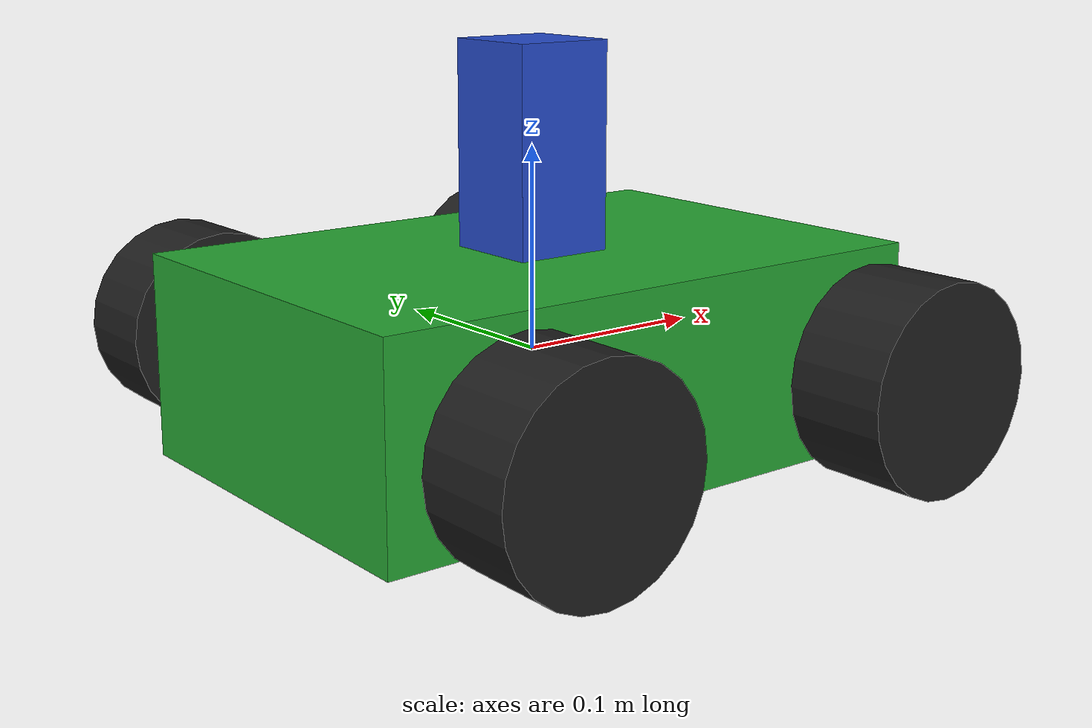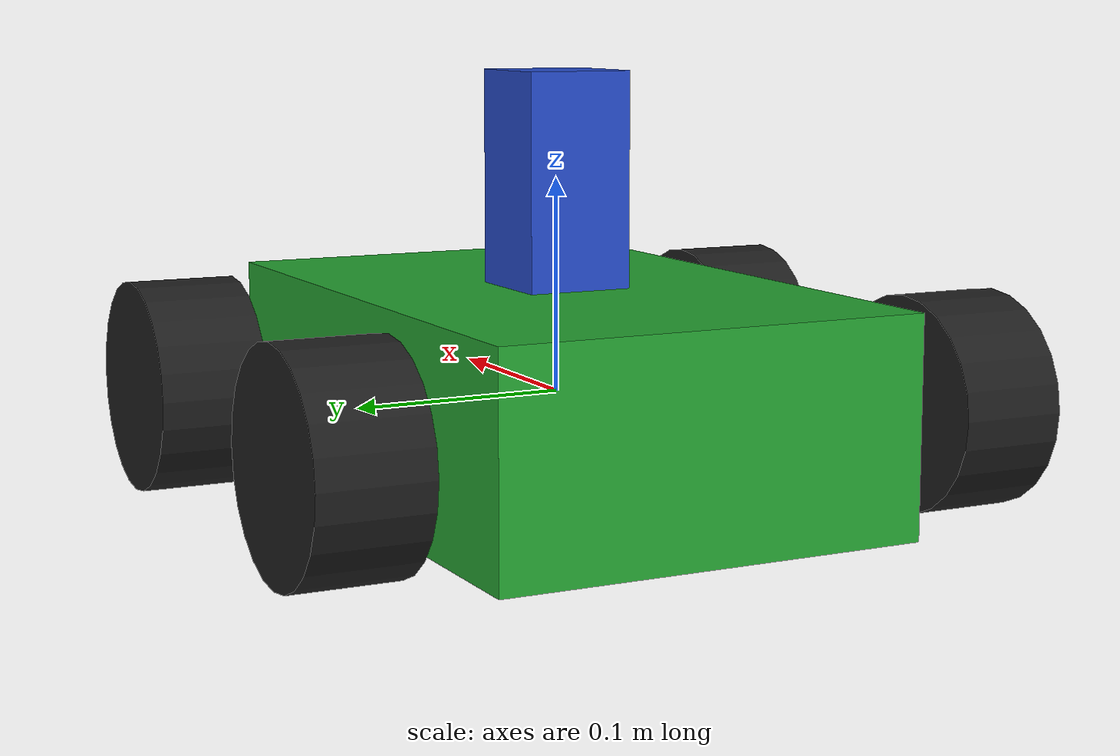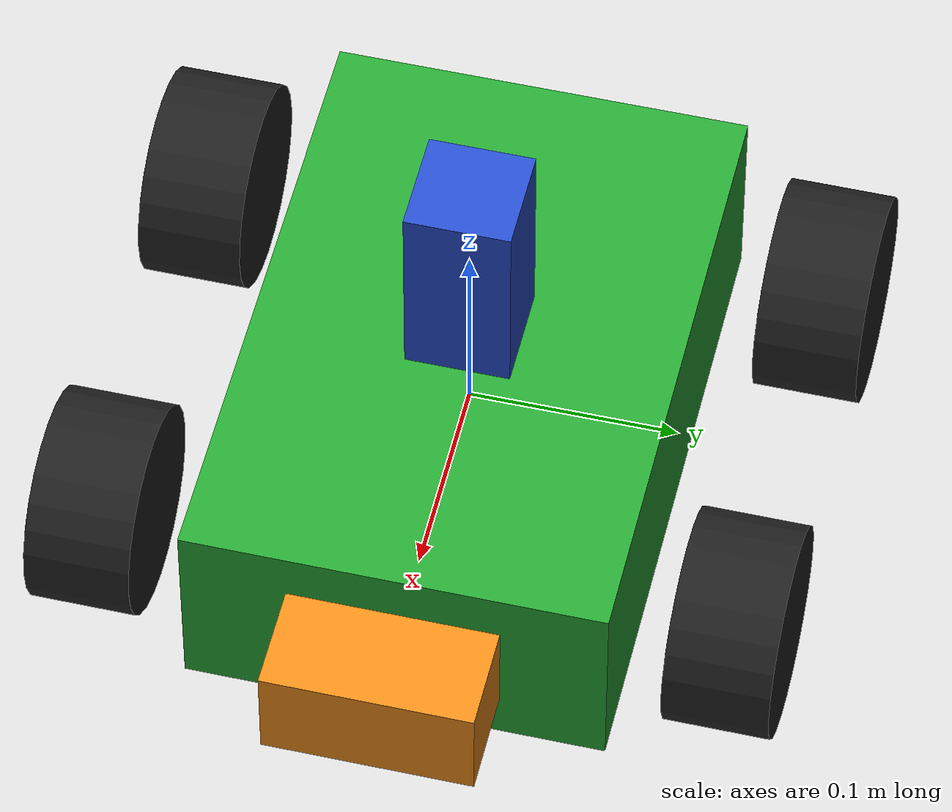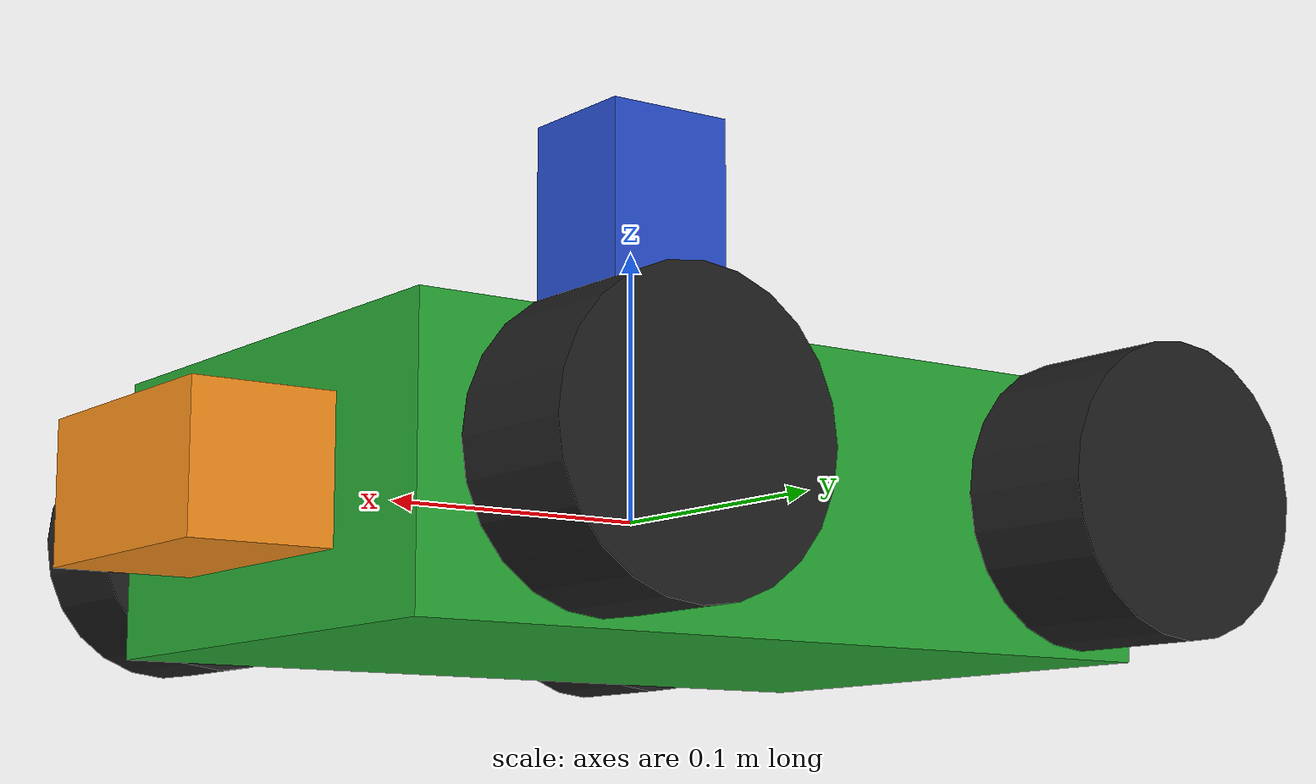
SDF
<sdf version='1.6'>
  <model name='robot1_xacro'>
    <link name='base_link'>
      <pose frame=''>0 0 0 0 -0 0</pose>
      <inertial>
        <pose frame=''>0.000792 0 0.00905 0 -0 0</pose>
        <mass>11.05</mass>
        <inertia>
          <ixx>3.0091</ixx>
          <ixy>0</ixy>
          <ixz>7.91855e-05</ixz>
          <iyy>3.01062</iyy>
          <iyz>0</iyz>
          <izz>3.00152</izz>
        </inertia>
      </inertial>
      <collision name='base_link_collision'>
        <pose frame=''>0 0 0 0 -0 0</pose>
        <geometry>
          <box>
            <size>0.3 0.2 0.1</size>
          </box>
        </geometry>
        <surface>
          <contact>
            <ode/>
          </contact>
          <friction>
            <ode/>
          </friction>
        </surface>
      </collision>
      <collision name='base_link_fixed_joint_lump__bumper_collision_1'>
        <pose frame=''>0.175 0 0 0 -0 0</pose>
        <geometry>
          <box>
            <size>0.05 0.1 0.05</size>
          </box>
        </geometry>
      </collision>
      <collision name='base_link_fixed_joint_lump__laser_link_collision_2'>
        <pose frame=''>0 0 0.1 0 -0 0</pose>
        <geometry>
          <box>
            <size>0.05 0.05 0.1</size>
          </box>
        </geometry>
        <surface>
          <contact>
            <ode/>
          </contact>
          <friction>
            <ode/>
          </friction>
        </surface>
      </collision>
      <visual name='base_link_visual'>
        <pose frame=''>0 0 0 0 -0 0</pose>
        <geometry>
          <box>
            <size>0.3 0.2 0.1</size>
          </box>
        </geometry>
        <material>
          <script>
            <name>Gazebo/Green</name>
            <uri>file://media/materials/scripts/gazebo.material</uri>
          </script>
        </material>
      </visual>
      <visual name='base_link_fixed_joint_lump__bumper_link_visual_1'>
        <pose frame=''>0.175 0 0 0 -0 0</pose>
        <geometry>
          <box>
            <size>0.05 0.1 0.05</size>
          </box>
        </geometry>
        <material>
          <script>
            <name>Gazebo/Orange</name>
            <uri>file://media/materials/scripts/gazebo.material</uri>
          </script>
        </material>
      </visual>
      <visual name='base_link_fixed_joint_lump__laser_link_visual_2'>
        <pose frame=''>0 0 0.1 0 -0 0</pose>
        <geometry>
          <box>
            <size>0.05 0.05 0.1</size>
          </box>
        </geometry>
        <material>
          <script>
            <name>Gazebo/Blue</name>
            <uri>file://media/materials/scripts/gazebo.material</uri>
          </script>
        </material>
      </visual>
      <velocity_decay/>
      <velocity_decay/>
      <velocity_decay/>
      <sensor name='pressure_sensor' type='contact'>
        <always_on>1</always_on>
        <update_rate>1</update_rate>
        <visualize>1</visualize>
        <plugin name='robottest_gazebo_ros_bumper_controller' filename='libgazebo_ros_bumper.so'>
          <alwaysOn>1</alwaysOn>
          <updateRate>1</updateRate>
          <contact>
            <collision>base_link_fixed_joint_lump__bumper_collision_1</collision>
          </contact>
          <bumperTopicName>/robottest/bumper</bumperTopicName>
          <frameName>bumper_link</frameName>
        </plugin>
        <pose frame=''>0.175 0 0 0 -0 0</pose>
      </sensor>
      <velocity_decay/>
      <gravity>1</gravity>
      <velocity_decay/>
      <sensor name='head_hokuyo_sensor' type='ray'>
        <visualize>1</visualize>
        <update_rate>1</update_rate>
        <ray>
          <scan>
            <horizontal>
              <samples>100</samples>
              <resolution>1</resolution>
              <min_angle>-1.5708</min_angle>
              <max_angle>1.5708</max_angle>
            </horizontal>
          </scan>
          <range>
            <min>0.1</min>
            <max>5</max>
            <resolution>0.1</resolution>
          </range>
          <noise>
            <type>gaussian</type>
            <mean>0</mean>
            <stddev>0.01</stddev>
          </noise>
        </ray>
        <plugin name='gazebo_ros_head_hokuyo_controller' filename='libgazebo_ros_laser.so'>
          <topicName>/robottest/scan</topicName>
          <frameName>laser_link</frameName>
        </plugin>
        <pose frame=''>0 0 0.1 0 -0 0</pose>
      </sensor>
    </link>
    <link name='wheel_1'>
      <pose frame=''>0.1 0.15 0 1.5707 -0 0</pose>
      <inertial>
        <pose frame=''>0 0 0 0 -0 0</pose>
        <mass>1</mass>
        <inertia>
          <ixx>1</ixx>
          <ixy>0</ixy>
          <ixz>0</ixz>
          <iyy>1</iyy>
          <iyz>0</iyz>
          <izz>1</izz>
        </inertia>
      </inertial>
      <collision name='wheel_1_collision'>
        <pose frame=''>0 0 0 0 -0 0</pose>
        <geometry>
          <cylinder>
            <length>0.05</length>
            <radius>0.05</radius>
          </cylinder>
        </geometry>
        <surface>
          <contact>
            <ode/>
          </contact>
          <friction>
            <ode/>
          </friction>
        </surface>
      </collision>
      <visual name='wheel_1_visual'>
        <pose frame=''>0 0 0 0 -0 0</pose>
        <geometry>
          <cylinder>
            <length>0.05</length>
            <radius>0.05</radius>
          </cylinder>
        </geometry>
        <material>
          <script>
            <name>Gazebo/black</name>
            <uri>file://media/materials/scripts/gazebo.material</uri>
          </script>
        </material>
      </visual>
      <gravity>1</gravity>
      <velocity_decay/>
    </link>
    <joint name='base_to_wheel1' type='revolute'>
      <child>wheel_1</child>
      <parent>base_link</parent>
      <axis>
        <xyz>0 -1 9.6e-05</xyz>
        <limit>
          <lower>-1e+16</lower>
          <upper>1e+16</upper>
        </limit>
        <dynamics>
          <spring_reference>0</spring_reference>
          <spring_stiffness>0</spring_stiffness>
        </dynamics>
        <use_parent_model_frame>1</use_parent_model_frame>
      </axis>
    </joint>
    <link name='wheel_2'>
      <pose frame=''>-0.1 0.15 0 1.5707 -0 0</pose>
      <inertial>
        <pose frame=''>0 0 0 0 -0 0</pose>
        <mass>1</mass>
        <inertia>
          <ixx>1</ixx>
          <ixy>0</ixy>
          <ixz>0</ixz>
          <iyy>1</iyy>
          <iyz>0</iyz>
          <izz>1</izz>
        </inertia>
      </inertial>
      <collision name='wheel_2_collision'>
        <pose frame=''>0 0 0 0 -0 0</pose>
        <geometry>
          <cylinder>
            <length>0.05</length>
            <radius>0.05</radius>
          </cylinder>
        </geometry>
        <surface>
          <contact>
            <ode/>
          </contact>
          <friction>
            <ode/>
          </friction>
        </surface>
      </collision>
      <visual name='wheel_2_visual'>
        <pose frame=''>0 0 0 0 -0 0</pose>
        <geometry>
          <cylinder>
            <length>0.05</length>
            <radius>0.05</radius>
          </cylinder>
        </geometry>
        <material>
          <script>
            <name>Gazebo/black</name>
            <uri>file://media/materials/scripts/gazebo.material</uri>
          </script>
        </material>
      </visual>
      <gravity>1</gravity>
      <velocity_decay/>
    </link>
    <joint name='base_to_wheel2' type='revolute'>
      <child>wheel_2</child>
      <parent>base_link</parent>
      <axis>
        <xyz>0 -1 9.6e-05</xyz>
        <limit>
          <lower>-1e+16</lower>
          <upper>1e+16</upper>
        </limit>
        <dynamics>
          <spring_reference>0</spring_reference>
          <spring_stiffness>0</spring_stiffness>
        </dynamics>
        <use_parent_model_frame>1</use_parent_model_frame>
      </axis>
    </joint>
    <link name='wheel_3'>
      <pose frame=''>0.1 -0.15 0 1.5707 -0 0</pose>
      <inertial>
        <pose frame=''>0 0 0 0 -0 0</pose>
        <mass>1</mass>
        <inertia>
          <ixx>1</ixx>
          <ixy>0</ixy>
          <ixz>0</ixz>
          <iyy>1</iyy>
          <iyz>0</iyz>
          <izz>1</izz>
        </inertia>
      </inertial>
      <collision name='wheel_3_collision'>
        <pose frame=''>0 0 0 0 -0 0</pose>
        <geometry>
          <cylinder>
            <length>0.05</length>
            <radius>0.05</radius>
          </cylinder>
        </geometry>
        <surface>
          <contact>
            <ode/>
          </contact>
          <friction>
            <ode/>
          </friction>
        </surface>
      </collision>
      <visual name='wheel_3_visual'>
        <pose frame=''>0 0 0 0 -0 0</pose>
        <geometry>
          <cylinder>
            <length>0.05</length>
            <radius>0.05</radius>
          </cylinder>
        </geometry>
        <material>
          <script>
            <name>Gazebo/black</name>
            <uri>file://media/materials/scripts/gazebo.material</uri>
          </script>
        </material>
      </visual>
      <gravity>1</gravity>
      <velocity_decay/>
    </link>
    <joint name='base_to_wheel3' type='revolute'>
      <child>wheel_3</child>
      <parent>base_link</parent>
      <axis>
        <xyz>0 -1 9.6e-05</xyz>
        <limit>
          <lower>-1e+16</lower>
          <upper>1e+16</upper>
        </limit>
        <dynamics>
          <spring_reference>0</spring_reference>
          <spring_stiffness>0</spring_stiffness>
        </dynamics>
        <use_parent_model_frame>1</use_parent_model_frame>
      </axis>
    </joint>
    <link name='wheel_4'>
      <pose frame=''>-0.1 -0.15 0 1.5707 -0 0</pose>
      <inertial>
        <pose frame=''>0 0 0 0 -0 0</pose>
        <mass>1</mass>
        <inertia>
          <ixx>1</ixx>
          <ixy>0</ixy>
          <ixz>0</ixz>
          <iyy>1</iyy>
          <iyz>0</iyz>
          <izz>1</izz>
        </inertia>
      </inertial>
      <collision name='wheel_4_collision'>
        <pose frame=''>0 0 0 0 -0 0</pose>
        <geometry>
          <cylinder>
            <length>0.05</length>
            <radius>0.05</radius>
          </cylinder>
        </geometry>
        <surface>
          <contact>
            <ode/>
          </contact>
          <friction>
            <ode/>
          </friction>
        </surface>
      </collision>
      <visual name='wheel_4_visual'>
        <pose frame=''>0 0 0 0 -0 0</pose>
        <geometry>
          <cylinder>
            <length>0.05</length>
            <radius>0.05</radius>
          </cylinder>
        </geometry>
        <material>
          <script>
            <name>Gazebo/black</name>
            <uri>file://media/materials/scripts/gazebo.material</uri>
          </script>
        </material>
      </visual>
      <gravity>1</gravity>
      <velocity_decay/>
    </link>
    <joint name='base_to_wheel4' type='revolute'>
      <child>wheel_4</child>
      <parent>base_link</parent>
      <axis>
        <xyz>0 -1 9.6e-05</xyz>
        <limit>
          <lower>-1e+16</lower>
          <upper>1e+16</upper>
        </limit>
        <dynamics>
          <spring_reference>0</spring_reference>
          <spring_stiffness>0</spring_stiffness>
        </dynamics>
        <use_parent_model_frame>1</use_parent_model_frame>
      </axis>
    </joint>
    <static>0</static>
    <plugin name='skid_steer_drive_controller' filename='libgazebo_ros_skid_steer_drive.so'>
      <alwaysOn>true</alwaysOn>
      <updateRate>100.0</updateRate>
      <robotNamespace>/</robotNamespace>
      <leftFrontJoint>base_to_wheel1</leftFrontJoint>
      <rightFrontJoint>base_to_wheel3</rightFrontJoint>
      <leftRearJoint>base_to_wheel2</leftRearJoint>
      <rightRearJoint>base_to_wheel4</rightRearJoint>
      <wheelSeparation>0.2</wheelSeparation>
      <wheelDiameter>0.1</wheelDiameter>
      <torque>2</torque>
      <commandTopic>cmd_vel</commandTopic>
      <robotBaseFrame>base_link</robotBaseFrame>
      <broadcastTF>1</broadcastTF>
    </plugin>
  </model>
</sdf>
